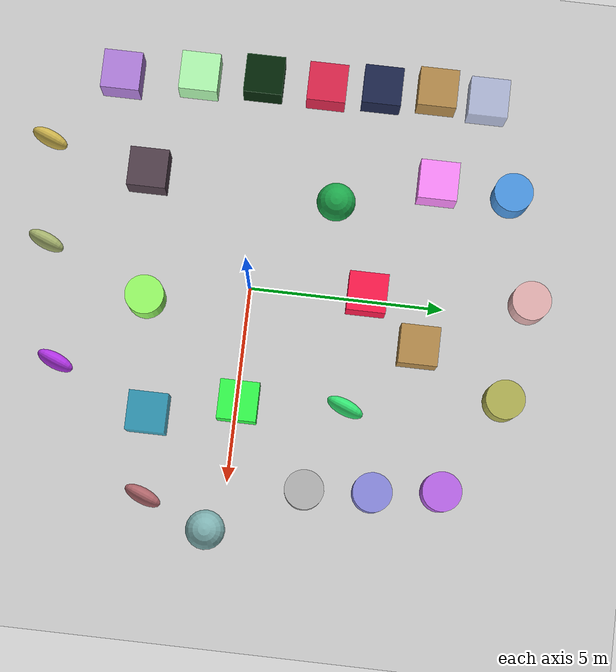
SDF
<sdf version='1.9'>
  <world name='traxter_world'>
    <physics name='1ms' type='ignored'>
      <max_step_size>0.01</max_step_size>
      <real_time_factor>1</real_time_factor>
      <real_time_update_rate>1000</real_time_update_rate>
    </physics>
    <plugin name='ignition::gazebo::systems::Physics' filename='ignition-gazebo-physics-system'/>
    <plugin name='ignition::gazebo::systems::UserCommands' filename='ignition-gazebo-user-commands-system'/>
    <plugin name='ignition::gazebo::systems::SceneBroadcaster' filename='ignition-gazebo-scene-broadcaster-system'/>
    <plugin name='ignition::gazebo::systems::Imu' filename='libignition-gazebo-imu-system.so'/>
    <plugin name='ignition::gazebo::systems::Contact' filename='ignition-gazebo-contact-system'/>
    <plugin name='ignition::gazebo::systems::Sensors' filename='ignition-gazebo-sensors-system'>
      <render_engine>ogre2</render_engine>
    </plugin>
    <gravity>0 0 -9.8</gravity>
    <magnetic_field>6e-06 2.3e-05 -4.2e-05</magnetic_field>
    <atmosphere type='adiabatic'/>
    <scene>
      <ambient>0.4 0.4 0.4 1</ambient>
      <background>0.7 0.7 0.7 1</background>
      <shadows>true</shadows>
    </scene>
    <model name='ground_plane'>
      <static>true</static>
      <link name='link'>
        <collision name='collision'>
          <geometry>
            <plane>
              <normal>0 0 1</normal>
              <size>100 100</size>
            </plane>
          </geometry>
          <surface>
            <friction>
              <ode/>
            </friction>
            <bounce/>
            <contact/>
          </surface>
        </collision>
        <visual name='visual'>
          <geometry>
            <plane>
              <normal>0 0 1</normal>
              <size>100 100</size>
            </plane>
          </geometry>
          <material>
            <ambient>0.8 0.8 0.8 1</ambient>
            <diffuse>0.8 0.8 0.8 1</diffuse>
            <specular>0.8 0.8 0.8 1</specular>
          </material>
        </visual>
        <pose>0 0 0 0 -0 0</pose>
        <inertial>
          <pose>0 0 0 0 -0 0</pose>
          <mass>1</mass>
          <inertia>
            <ixx>1</ixx>
            <ixy>0</ixy>
            <ixz>0</ixz>
            <iyy>1</iyy>
            <iyz>0</iyz>
            <izz>1</izz>
          </inertia>
        </inertial>
        <enable_wind>false</enable_wind>
      </link>
      <pose>0 0 0 0 -0 0</pose>
      <self_collide>false</self_collide>
    </model>
    <model name='box'>
      <pose>-0.115406 3.00387 0.5 0 -0 0</pose>
      <link name='box_link'>
        <inertial>
          <inertia>
            <ixx>0.16666</ixx>
            <ixy>0</ixy>
            <ixz>0</ixz>
            <iyy>0.16666</iyy>
            <iyz>0</iyz>
            <izz>0.16666</izz>
          </inertia>
          <mass>1</mass>
          <pose>0 0 0 0 -0 0</pose>
        </inertial>
        <collision name='box_collision'>
          <geometry>
            <box>
              <size>1 1 1</size>
            </box>
          </geometry>
          <surface>
            <friction>
              <ode/>
            </friction>
            <bounce/>
            <contact/>
          </surface>
        </collision>
        <visual name='box_visual'>
          <geometry>
            <box>
              <size>1 1 1</size>
            </box>
          </geometry>
          <material>
            <ambient>0.95 0.1 0.1 0.8</ambient>
            <diffuse>1.0 0.1 0.3 1</diffuse>
            <specular>1 1 1 1</specular>
          </material>
        </visual>
        <pose>0 0 0 0 -0 0</pose>
        <enable_wind>false</enable_wind>
      </link>
      <static>false</static>
      <self_collide>false</self_collide>
    </model>
    <model name='box_0'>
      <pose>2.97769 0.070848 0.5 0 -0 0</pose>
      <link name='box_link'>
        <inertial>
          <inertia>
            <ixx>0.16666</ixx>
            <ixy>0</ixy>
            <ixz>0</ixz>
            <iyy>0.16666</iyy>
            <iyz>0</iyz>
            <izz>0.16666</izz>
          </inertia>
          <mass>1</mass>
          <pose>0 0 0 0 -0 0</pose>
        </inertial>
        <collision name='box_collision'>
          <geometry>
            <box>
              <size>1 1 1</size>
            </box>
          </geometry>
          <surface>
            <friction>
              <ode/>
            </friction>
            <bounce/>
            <contact/>
          </surface>
        </collision>
        <visual name='box_visual'>
          <geometry>
            <box>
              <size>1 1 1</size>
            </box>
          </geometry>
          <material>
            <ambient>0.1 0.95 0.1 0.8</ambient>
            <diffuse>0.2 1.0 0.3 1</diffuse>
            <specular>1 1 1 1</specular>
          </material>
        </visual>
        <pose>0 0 0 0 -0 0</pose>
        <enable_wind>false</enable_wind>
      </link>
      <static>false</static>
      <self_collide>false</self_collide>
    </model>
    <model name='cylinder'>
      <pose>0.583349 -2.59674 0.5 0 0 0</pose>
      <link name='cylinder_link'>
        <inertial>
          <inertia>
            <ixx>0.14580000000000001</ixx>
            <ixy>0</ixy>
            <ixz>0</ixz>
            <iyy>0.14580000000000001</iyy>
            <iyz>0</iyz>
            <izz>0.125</izz>
          </inertia>
          <mass>1</mass>
          <pose>0 0 0 0 -0 0</pose>
        </inertial>
        <collision name='cylinder_collision'>
          <geometry>
            <cylinder>
              <radius>0.5</radius>
              <length>1</length>
            </cylinder>
          </geometry>
          <surface>
            <friction>
              <ode/>
            </friction>
            <bounce/>
            <contact/>
          </surface>
        </collision>
        <visual name='cylinder_visual'>
          <geometry>
            <cylinder>
              <radius>0.5</radius>
              <length>1</length>
            </cylinder>
          </geometry>
          <material>
            <ambient>0.8 0.95 0.1 0.98</ambient>
            <diffuse>0.6 1.0 0.4 1</diffuse>
            <specular>1 1 1 1</specular>
          </material>
        </visual>
        <pose>0 0 0 0 -0 0</pose>
        <enable_wind>false</enable_wind>
      </link>
      <static>false</static>
      <self_collide>false</self_collide>
    </model>
    <model name='ellipsoid'>
      <pose>2.79648 2.76486 0.270358 1.57079 -0.212416 -0.373363</pose>
      <link name='ellipsoid_link'>
        <inertial>
          <inertia>
            <ixx>0.068000000000000005</ixx>
            <ixy>0</ixy>
            <ixz>0</ixz>
            <iyy>0.058000000000000003</iyy>
            <iyz>0</iyz>
            <izz>0.025999999999999999</izz>
          </inertia>
          <mass>1</mass>
          <pose>0 0 0 0 -0 0</pose>
        </inertial>
        <collision name='ellipsoid_collision'>
          <geometry>
            <ellipsoid>
              <radii>0.2 0.3 0.5</radii>
            </ellipsoid>
          </geometry>
          <surface>
            <friction>
              <ode/>
            </friction>
            <bounce/>
            <contact/>
          </surface>
        </collision>
        <visual name='ellipsoid_visual'>
          <geometry>
            <ellipsoid>
              <radii>0.2 0.3 0.5</radii>
            </ellipsoid>
          </geometry>
          <material>
            <ambient>0.18 0.55 0.1 1</ambient>
            <diffuse>0.2 0.9 0.45 1</diffuse>
            <specular>1 1 1 1</specular>
          </material>
        </visual>
        <pose>0 0 0 0 -0 0</pose>
        <enable_wind>false</enable_wind>
      </link>
      <static>false</static>
      <self_collide>false</self_collide>
    </model>
    <model name='box_2'>
      <pose>1.07518 4.43966 0.5 0 -0 0</pose>
      <link name='box_link'>
        <inertial>
          <inertia>
            <ixx>0.16666</ixx>
            <ixy>0</ixy>
            <ixz>0</ixz>
            <iyy>0.16666</iyy>
            <iyz>0</iyz>
            <izz>0.16666</izz>
          </inertia>
          <mass>1</mass>
          <pose>0 0 0 0 -0 0</pose>
        </inertial>
        <collision name='box_collision'>
          <geometry>
            <box>
              <size>1 1 1</size>
            </box>
          </geometry>
          <surface>
            <friction>
              <ode/>
            </friction>
            <bounce/>
            <contact/>
          </surface>
        </collision>
        <visual name='box_visual'>
          <geometry>
            <box>
              <size>1 1 1</size>
            </box>
          </geometry>
          <material>
            <ambient>0.82 0.08 0.32 0.5</ambient>
            <diffuse>0.71 0.55 0.3 1</diffuse>
            <specular>1 1 1 1</specular>
          </material>
        </visual>
        <pose>0 0 0 0 -0 0</pose>
        <enable_wind>false</enable_wind>
      </link>
      <static>false</static>
      <self_collide>false</self_collide>
    </model>
    <model name='box_3'>
      <pose>-2.67094 -2.9059 0.5 0 -0 0</pose>
      <link name='box_link'>
        <inertial>
          <inertia>
            <ixx>0.16666</ixx>
            <ixy>0</ixy>
            <ixz>0</ixz>
            <iyy>0.16666</iyy>
            <iyz>0</iyz>
            <izz>0.16666</izz>
          </inertia>
          <mass>1</mass>
          <pose>0 0 0 0 -0 0</pose>
        </inertial>
        <collision name='box_collision'>
          <geometry>
            <box>
              <size>1 1 1</size>
            </box>
          </geometry>
          <surface>
            <friction>
              <ode/>
            </friction>
            <bounce/>
            <contact/>
          </surface>
        </collision>
        <visual name='box_visual'>
          <geometry>
            <box>
              <size>1 1 1</size>
            </box>
          </geometry>
          <material>
            <ambient>0.54 0.08 0.52 0.9</ambient>
            <diffuse>0.32 0.25 0.3 1</diffuse>
            <specular>1 1 1 1</specular>
          </material>
        </visual>
        <pose>0 0 0 0 -0 0</pose>
        <enable_wind>false</enable_wind>
      </link>
      <static>false</static>
      <self_collide>false</self_collide>
    </model>
    <model name='sphere'>
      <pose>-2.4052 1.95968 0.5 0 -0 0</pose>
      <link name='sphere_link'>
        <inertial>
          <inertia>
            <ixx>0.10000000000000001</ixx>
            <ixy>0</ixy>
            <ixz>0</ixz>
            <iyy>0.10000000000000001</iyy>
            <iyz>0</iyz>
            <izz>0.10000000000000001</izz>
          </inertia>
          <mass>1</mass>
          <pose>0 0 0 0 -0 0</pose>
        </inertial>
        <collision name='sphere_collision'>
          <geometry>
            <sphere>
              <radius>0.5</radius>
            </sphere>
          </geometry>
          <surface>
            <friction>
              <ode/>
            </friction>
            <bounce/>
            <contact/>
          </surface>
        </collision>
        <visual name='sphere_visual'>
          <geometry>
            <sphere>
              <radius>0.5</radius>
            </sphere>
          </geometry>
          <material>
            <ambient>0.72 0.3 0.66 1</ambient>
            <diffuse>0.12 0.66 0.3 1</diffuse>
            <specular>1 1 1 1</specular>
          </material>
        </visual>
        <pose>0 0 0 0 -0 0</pose>
        <enable_wind>false</enable_wind>
      </link>
      <static>false</static>
      <self_collide>false</self_collide>
    </model>
    <model name='box_4'>
      <pose>-3.17951 4.50028 0.5 0 -0 0</pose>
      <link name='box_link'>
        <inertial>
          <inertia>
            <ixx>0.16666</ixx>
            <ixy>0</ixy>
            <ixz>0</ixz>
            <iyy>0.16666</iyy>
            <iyz>0</iyz>
            <izz>0.16666</izz>
          </inertia>
          <mass>1</mass>
          <pose>0 0 0 0 -0 0</pose>
        </inertial>
        <collision name='box_collision'>
          <geometry>
            <box>
              <size>1 1 1</size>
            </box>
          </geometry>
          <surface>
            <friction>
              <ode/>
            </friction>
            <bounce/>
            <contact/>
          </surface>
        </collision>
        <visual name='box_visual'>
          <geometry>
            <box>
              <size>1 1 1</size>
            </box>
          </geometry>
          <material>
            <ambient>1.0 1.0 0.32 1</ambient>
            <diffuse>1.0 0.55 1.0 1</diffuse>
            <specular>1 1 1 1</specular>
          </material>
        </visual>
        <pose>0 0 0 0 -0 0</pose>
        <enable_wind>false</enable_wind>
      </link>
      <static>false</static>
      <self_collide>false</self_collide>
    </model>
    <model name='box_5'>
      <pose>3.51302 -2.17253 0.5 0 -0 0</pose>
      <link name='box_link'>
        <inertial>
          <inertia>
            <ixx>0.16666</ixx>
            <ixy>0</ixy>
            <ixz>0</ixz>
            <iyy>0.16666</iyy>
            <iyz>0</iyz>
            <izz>0.16666</izz>
          </inertia>
          <mass>1</mass>
          <pose>0 0 0 0 -0 0</pose>
        </inertial>
        <collision name='box_collision'>
          <geometry>
            <box>
              <size>1 1 1</size>
            </box>
          </geometry>
          <surface>
            <friction>
              <ode/>
            </friction>
            <bounce/>
            <contact/>
          </surface>
        </collision>
        <visual name='box_visual'>
          <geometry>
            <box>
              <size>1 1 1</size>
            </box>
          </geometry>
          <material>
            <ambient>0.01 0.34 0.32 0.85</ambient>
            <diffuse>0.01 0.55 0.7 0.73</diffuse>
            <specular>1 1 1 1</specular>
          </material>
        </visual>
        <pose>0 0 0 0 -0 0</pose>
        <enable_wind>false</enable_wind>
      </link>
      <static>false</static>
      <self_collide>false</self_collide>
    </model>
    <model name='box_1'>
      <pose>-5.47952 5.56454 0.5 0 -0 0</pose>
      <link name='box_link'>
        <inertial>
          <inertia>
            <ixx>0.16666</ixx>
            <ixy>0</ixy>
            <ixz>0</ixz>
            <iyy>0.16666</iyy>
            <iyz>0</iyz>
            <izz>0.16666</izz>
          </inertia>
          <mass>1</mass>
          <pose>0 0 0 0 -0 0</pose>
        </inertial>
        <collision name='box_collision'>
          <geometry>
            <box>
              <size>1 1 1</size>
            </box>
          </geometry>
          <surface>
            <friction>
              <ode/>
            </friction>
            <bounce/>
            <contact/>
          </surface>
        </collision>
        <visual name='box_visual'>
          <geometry>
            <box>
              <size>1 1 1</size>
            </box>
          </geometry>
          <material>
            <ambient>0.92 0.98 0.72 0.76</ambient>
            <diffuse>0.71 0.75 0.9 0.82</diffuse>
            <specular>1 1 1 1</specular>
          </material>
        </visual>
        <pose>0 0 0 0 -0 0</pose>
        <enable_wind>false</enable_wind>
      </link>
      <static>false</static>
      <self_collide>false</self_collide>
    </model>
    <model name='box_6'>
      <pose>-5.58431 4.24188 0.5 0 -0 0</pose>
      <link name='box_link'>
        <inertial>
          <inertia>
            <ixx>0.16666</ixx>
            <ixy>0</ixy>
            <ixz>0</ixz>
            <iyy>0.16666</iyy>
            <iyz>0</iyz>
            <izz>0.16666</izz>
          </inertia>
          <mass>1</mass>
          <pose>0 0 0 0 -0 0</pose>
        </inertial>
        <collision name='box_collision'>
          <geometry>
            <box>
              <size>1 1 1</size>
            </box>
          </geometry>
          <surface>
            <friction>
              <ode/>
            </friction>
            <bounce/>
            <contact/>
          </surface>
        </collision>
        <visual name='box_visual'>
          <geometry>
            <box>
              <size>1 1 1</size>
            </box>
          </geometry>
          <material>
            <ambient>0.82 0.08 0.32 0.5</ambient>
            <diffuse>0.71 0.55 0.3 1</diffuse>
            <specular>1 1 1 1</specular>
          </material>
        </visual>
        <pose>0 0 0 0 -0 0</pose>
        <enable_wind>false</enable_wind>
      </link>
      <static>false</static>
      <self_collide>false</self_collide>
    </model>
    <model name='box_7'>
      <pose>-5.48257 2.82277 0.5 0 -0 0</pose>
      <link name='box_link'>
        <inertial>
          <inertia>
            <ixx>0.16666</ixx>
            <ixy>0</ixy>
            <ixz>0</ixz>
            <iyy>0.16666</iyy>
            <iyz>0</iyz>
            <izz>0.16666</izz>
          </inertia>
          <mass>1</mass>
          <pose>0 0 0 0 -0 0</pose>
        </inertial>
        <collision name='box_collision'>
          <geometry>
            <box>
              <size>1 1 1</size>
            </box>
          </geometry>
          <surface>
            <friction>
              <ode/>
            </friction>
            <bounce/>
            <contact/>
          </surface>
        </collision>
        <visual name='box_visual'>
          <geometry>
            <box>
              <size>1 1 1</size>
            </box>
          </geometry>
          <material>
            <ambient>0.54 0.8 0.42 0.93</ambient>
            <diffuse>0.11 0.15 0.3 1</diffuse>
            <specular>1 1 1 1</specular>
          </material>
        </visual>
        <pose>0 0 0 0 -0 0</pose>
        <enable_wind>false</enable_wind>
      </link>
      <static>false</static>
      <self_collide>false</self_collide>
    </model>
    <model name='box_8'>
      <pose>-5.39829 1.40248 0.5 0 -0 0</pose>
      <link name='box_link'>
        <inertial>
          <inertia>
            <ixx>0.16666</ixx>
            <ixy>0</ixy>
            <ixz>0</ixz>
            <iyy>0.16666</iyy>
            <iyz>0</iyz>
            <izz>0.16666</izz>
          </inertia>
          <mass>1</mass>
          <pose>0 0 0 0 -0 0</pose>
        </inertial>
        <collision name='box_collision'>
          <geometry>
            <box>
              <size>1 1 1</size>
            </box>
          </geometry>
          <surface>
            <friction>
              <ode/>
            </friction>
            <bounce/>
            <contact/>
          </surface>
        </collision>
        <visual name='box_visual'>
          <geometry>
            <box>
              <size>1 1 1</size>
            </box>
          </geometry>
          <material>
            <ambient>0.54 0.8 0.42 1</ambient>
            <diffuse>0.87 0.15 0.3 1</diffuse>
            <specular>1 1 1 1</specular>
          </material>
        </visual>
        <pose>0 0 0 0 -0 0</pose>
        <enable_wind>false</enable_wind>
      </link>
      <static>false</static>
      <self_collide>false</self_collide>
    </model>
    <model name='box_9'>
      <pose>-5.42424 -0.233622 0.5 0 -0 0</pose>
      <link name='box_link'>
        <inertial>
          <inertia>
            <ixx>0.16666</ixx>
            <ixy>0</ixy>
            <ixz>0</ixz>
            <iyy>0.16666</iyy>
            <iyz>0</iyz>
            <izz>0.16666</izz>
          </inertia>
          <mass>1</mass>
          <pose>0 0 0 0 -0 0</pose>
        </inertial>
        <collision name='box_collision'>
          <geometry>
            <box>
              <size>1 1 1</size>
            </box>
          </geometry>
          <surface>
            <friction>
              <ode/>
            </friction>
            <bounce/>
            <contact/>
          </surface>
        </collision>
        <visual name='box_visual'>
          <geometry>
            <box>
              <size>1 1 1</size>
            </box>
          </geometry>
          <material>
            <ambient>0.04 0.8 0.042 0.93</ambient>
            <diffuse>0.011 0.15 0.03 1</diffuse>
            <specular>1 1 1 1</specular>
          </material>
        </visual>
        <pose>0 0 0 0 -0 0</pose>
        <enable_wind>false</enable_wind>
      </link>
      <static>false</static>
      <self_collide>false</self_collide>
    </model>
    <model name='box_10'>
      <pose>-5.31544 -1.89587 0.5 0 -0 0</pose>
      <link name='box_link'>
        <inertial>
          <inertia>
            <ixx>0.16666</ixx>
            <ixy>0</ixy>
            <ixz>0</ixz>
            <iyy>0.16666</iyy>
            <iyz>0</iyz>
            <izz>0.16666</izz>
          </inertia>
          <mass>1</mass>
          <pose>0 0 0 0 -0 0</pose>
        </inertial>
        <collision name='box_collision'>
          <geometry>
            <box>
              <size>1 1 1</size>
            </box>
          </geometry>
          <surface>
            <friction>
              <ode/>
            </friction>
            <bounce/>
            <contact/>
          </surface>
        </collision>
        <visual name='box_visual'>
          <geometry>
            <box>
              <size>1 1 1</size>
            </box>
          </geometry>
          <material>
            <ambient>0.12 0.32 0.776 1</ambient>
            <diffuse>0.7 0.99 0.7 1</diffuse>
            <specular>1 1 1 1</specular>
          </material>
        </visual>
        <pose>0 0 0 0 -0 0</pose>
        <enable_wind>false</enable_wind>
      </link>
      <static>false</static>
      <self_collide>false</self_collide>
    </model>
    <model name='box_11'>
      <pose>-5.12767 -3.89037 0.5 0 -0 0</pose>
      <link name='box_link'>
        <inertial>
          <inertia>
            <ixx>0.16666</ixx>
            <ixy>0</ixy>
            <ixz>0</ixz>
            <iyy>0.16666</iyy>
            <iyz>0</iyz>
            <izz>0.16666</izz>
          </inertia>
          <mass>1</mass>
          <pose>0 0 0 0 -0 0</pose>
        </inertial>
        <collision name='box_collision'>
          <geometry>
            <box>
              <size>1 1 1</size>
            </box>
          </geometry>
          <surface>
            <friction>
              <ode/>
            </friction>
            <bounce/>
            <contact/>
          </surface>
        </collision>
        <visual name='box_visual'>
          <geometry>
            <box>
              <size>1 1 1</size>
            </box>
          </geometry>
          <material>
            <ambient>0.45 0.2 0.2 1.0</ambient>
            <diffuse>0.7 0.5 0.87 1.0</diffuse>
            <specular>1 1 1 1</specular>
          </material>
        </visual>
        <pose>0 0 0 0 -0 0</pose>
        <enable_wind>false</enable_wind>
      </link>
      <static>false</static>
      <self_collide>false</self_collide>
    </model>
    <model name='cylinder_0'>
      <pose>5.0016 1.96116 0.5 0 0 -0</pose>
      <link name='cylinder_link'>
        <inertial>
          <inertia>
            <ixx>0.14580000000000001</ixx>
            <ixy>0</ixy>
            <ixz>0</ixz>
            <iyy>0.14580000000000001</iyy>
            <iyz>0</iyz>
            <izz>0.125</izz>
          </inertia>
          <mass>1</mass>
          <pose>0 0 0 0 -0 0</pose>
        </inertial>
        <collision name='cylinder_collision'>
          <geometry>
            <cylinder>
              <radius>0.5</radius>
              <length>1</length>
            </cylinder>
          </geometry>
          <surface>
            <friction>
              <ode/>
            </friction>
            <bounce/>
            <contact/>
          </surface>
        </collision>
        <visual name='cylinder_visual'>
          <geometry>
            <cylinder>
              <radius>0.5</radius>
              <length>1</length>
            </cylinder>
          </geometry>
          <material>
            <ambient>0.3 0.3 0.3 1</ambient>
            <diffuse>0.7 0.7 0.7 1</diffuse>
            <specular>1 1 1 1</specular>
          </material>
        </visual>
        <pose>0 0 0 0 -0 0</pose>
        <enable_wind>false</enable_wind>
      </link>
      <static>false</static>
      <self_collide>false</self_collide>
    </model>
    <model name='cylinder_1'>
      <pose>4.87964 3.65878 0.5 0 -0 0</pose>
      <link name='cylinder_link'>
        <inertial>
          <inertia>
            <ixx>0.14580000000000001</ixx>
            <ixy>0</ixy>
            <ixz>0</ixz>
            <iyy>0.14580000000000001</iyy>
            <iyz>0</iyz>
            <izz>0.125</izz>
          </inertia>
          <mass>1</mass>
          <pose>0 0 0 0 -0 0</pose>
        </inertial>
        <collision name='cylinder_collision'>
          <geometry>
            <cylinder>
              <radius>0.5</radius>
              <length>1</length>
            </cylinder>
          </geometry>
          <surface>
            <friction>
              <ode/>
            </friction>
            <bounce/>
            <contact/>
          </surface>
        </collision>
        <visual name='cylinder_visual'>
          <geometry>
            <cylinder>
              <radius>0.5</radius>
              <length>1</length>
            </cylinder>
          </geometry>
          <material>
            <ambient>0.12 0.12 0.87 1</ambient>
            <diffuse>0.54 0.54 0.87 1</diffuse>
            <specular>1 1 1 1</specular>
          </material>
        </visual>
        <pose>0 0 0 0 -0 0</pose>
        <enable_wind>false</enable_wind>
      </link>
      <static>false</static>
      <self_collide>false</self_collide>
    </model>
    <model name='cylinder_2'>
      <pose>4.66481 5.37877 0.5 0 -0 0</pose>
      <link name='cylinder_link'>
        <inertial>
          <inertia>
            <ixx>0.14580000000000001</ixx>
            <ixy>0</ixy>
            <ixz>0</ixz>
            <iyy>0.14580000000000001</iyy>
            <iyz>0</iyz>
            <izz>0.125</izz>
          </inertia>
          <mass>1</mass>
          <pose>0 0 0 0 -0 0</pose>
        </inertial>
        <collision name='cylinder_collision'>
          <geometry>
            <cylinder>
              <radius>0.5</radius>
              <length>1</length>
            </cylinder>
          </geometry>
          <surface>
            <friction>
              <ode/>
            </friction>
            <bounce/>
            <contact/>
          </surface>
        </collision>
        <visual name='cylinder_visual'>
          <geometry>
            <cylinder>
              <radius>0.5</radius>
              <length>1</length>
            </cylinder>
          </geometry>
          <material>
            <ambient>0.33 0.22 0.77 1</ambient>
            <diffuse>0.73 0.4 0.92 1</diffuse>
            <specular>1 1 1 1</specular>
          </material>
        </visual>
        <pose>0 0 0 0 -0 0</pose>
        <enable_wind>false</enable_wind>
      </link>
      <static>false</static>
      <self_collide>false</self_collide>
    </model>
    <model name='cylinder_3'>
      <pose>2.20179 6.72388 0.5 0 -0 -0</pose>
      <link name='cylinder_link'>
        <inertial>
          <inertia>
            <ixx>0.14580000000000001</ixx>
            <ixy>0</ixy>
            <ixz>0</ixz>
            <iyy>0.14580000000000001</iyy>
            <iyz>0</iyz>
            <izz>0.125</izz>
          </inertia>
          <mass>1</mass>
          <pose>0 0 0 0 -0 0</pose>
        </inertial>
        <collision name='cylinder_collision'>
          <geometry>
            <cylinder>
              <radius>0.5</radius>
              <length>1</length>
            </cylinder>
          </geometry>
          <surface>
            <friction>
              <ode/>
            </friction>
            <bounce/>
            <contact/>
          </surface>
        </collision>
        <visual name='cylinder_visual'>
          <geometry>
            <cylinder>
              <radius>0.5</radius>
              <length>1</length>
            </cylinder>
          </geometry>
          <material>
            <ambient>0.43 0.2 0.33 1</ambient>
            <diffuse>0.7 0.7 0.33 1</diffuse>
            <specular>1 1 1 1</specular>
          </material>
        </visual>
        <pose>0 0 0 0 -0 0</pose>
        <enable_wind>false</enable_wind>
      </link>
      <static>false</static>
      <self_collide>false</self_collide>
    </model>
    <model name='cylinder_4'>
      <pose>-0.360688 7.14077 0.5 0 -0 0</pose>
      <link name='cylinder_link'>
        <inertial>
          <inertia>
            <ixx>0.14580000000000001</ixx>
            <ixy>0</ixy>
            <ixz>0</ixz>
            <iyy>0.14580000000000001</iyy>
            <iyz>0</iyz>
            <izz>0.125</izz>
          </inertia>
          <mass>1</mass>
          <pose>0 0 0 0 -0 0</pose>
        </inertial>
        <collision name='cylinder_collision'>
          <geometry>
            <cylinder>
              <radius>0.5</radius>
              <length>1</length>
            </cylinder>
          </geometry>
          <surface>
            <friction>
              <ode/>
            </friction>
            <bounce/>
            <contact/>
          </surface>
        </collision>
        <visual name='cylinder_visual'>
          <geometry>
            <cylinder>
              <radius>0.5</radius>
              <length>1</length>
            </cylinder>
          </geometry>
          <material>
            <ambient>0.8 0.8 0.43 1</ambient>
            <diffuse>0.9 0.7 0.7 1</diffuse>
            <specular>1 1 1 1</specular>
          </material>
        </visual>
        <pose>0 0 0 0 -0 0</pose>
        <enable_wind>false</enable_wind>
      </link>
      <static>false</static>
      <self_collide>false</self_collide>
    </model>
    <model name='cylinder_5'>
      <pose>-3.07499 6.4207 0.5 -0 0 -0</pose>
      <link name='cylinder_link'>
        <inertial>
          <inertia>
            <ixx>0.14580000000000001</ixx>
            <ixy>0</ixy>
            <ixz>0</ixz>
            <iyy>0.14580000000000001</iyy>
            <iyz>0</iyz>
            <izz>0.125</izz>
          </inertia>
          <mass>1</mass>
          <pose>0 0 0 0 -0 0</pose>
        </inertial>
        <collision name='cylinder_collision'>
          <geometry>
            <cylinder>
              <radius>0.5</radius>
              <length>1</length>
            </cylinder>
          </geometry>
          <surface>
            <friction>
              <ode/>
            </friction>
            <bounce/>
            <contact/>
          </surface>
        </collision>
        <visual name='cylinder_visual'>
          <geometry>
            <cylinder>
              <radius>0.5</radius>
              <length>1</length>
            </cylinder>
          </geometry>
          <material>
            <ambient>0.6 0.7 0.9 1</ambient>
            <diffuse>0.3 0.6 0.9 1</diffuse>
            <specular>1 1 1 1</specular>
          </material>
        </visual>
        <pose>0 0 0 0 -0 0</pose>
        <enable_wind>false</enable_wind>
      </link>
      <static>false</static>
      <self_collide>false</self_collide>
    </model>
    <model name='ellipsoid_0'>
      <pose>-3.28194 -5.58673 0.270358 1.5708 -0.212417 -0.373896</pose>
      <link name='ellipsoid_link'>
        <inertial>
          <inertia>
            <ixx>0.068000000000000005</ixx>
            <ixy>0</ixy>
            <ixz>0</ixz>
            <iyy>0.058000000000000003</iyy>
            <iyz>0</iyz>
            <izz>0.025999999999999999</izz>
          </inertia>
          <mass>1</mass>
          <pose>0 0 0 0 -0 0</pose>
        </inertial>
        <collision name='ellipsoid_collision'>
          <geometry>
            <ellipsoid>
              <radii>0.2 0.3 0.5</radii>
            </ellipsoid>
          </geometry>
          <surface>
            <friction>
              <ode/>
            </friction>
            <bounce/>
            <contact/>
          </surface>
        </collision>
        <visual name='ellipsoid_visual'>
          <geometry>
            <ellipsoid>
              <radii>0.2 0.3 0.5</radii>
            </ellipsoid>
          </geometry>
          <material>
            <ambient>0.6 0.7 0.3 1</ambient>
            <diffuse>0.8 0.7 0.3 1</diffuse>
            <specular>1 1 1 1</specular>
          </material>
        </visual>
        <pose>0 0 0 0 -0 0</pose>
        <enable_wind>false</enable_wind>
      </link>
      <static>false</static>
      <self_collide>false</self_collide>
    </model>
    <model name='ellipsoid_1'>
      <pose>-0.601371 -5.33813 0.270358 1.5708 -0.212417 -0.373485</pose>
      <link name='ellipsoid_link'>
        <inertial>
          <inertia>
            <ixx>0.068000000000000005</ixx>
            <ixy>0</ixy>
            <ixz>0</ixz>
            <iyy>0.058000000000000003</iyy>
            <iyz>0</iyz>
            <izz>0.025999999999999999</izz>
          </inertia>
          <mass>1</mass>
          <pose>0 0 0 0 -0 0</pose>
        </inertial>
        <collision name='ellipsoid_collision'>
          <geometry>
            <ellipsoid>
              <radii>0.2 0.3 0.5</radii>
            </ellipsoid>
          </geometry>
          <surface>
            <friction>
              <ode/>
            </friction>
            <bounce/>
            <contact/>
          </surface>
        </collision>
        <visual name='ellipsoid_visual'>
          <geometry>
            <ellipsoid>
              <radii>0.2 0.3 0.5</radii>
            </ellipsoid>
          </geometry>
          <material>
            <ambient>0.87 0.8 0.3 1</ambient>
            <diffuse>0.65 0.7 0.43 1</diffuse>
            <specular>1 1 1 1</specular>
          </material>
        </visual>
        <pose>0 0 0 0 -0 0</pose>
        <enable_wind>false</enable_wind>
      </link>
      <static>false</static>
      <self_collide>false</self_collide>
    </model>
    <model name='ellipsoid_2'>
      <pose>2.44805 -4.70339 0.270358 1.5708 -0.212417 -0.37331</pose>
      <link name='ellipsoid_link'>
        <inertial>
          <inertia>
            <ixx>0.068000000000000005</ixx>
            <ixy>0</ixy>
            <ixz>0</ixz>
            <iyy>0.058000000000000003</iyy>
            <iyz>0</iyz>
            <izz>0.025999999999999999</izz>
          </inertia>
          <mass>1</mass>
          <pose>0 0 0 0 -0 0</pose>
        </inertial>
        <collision name='ellipsoid_collision'>
          <geometry>
            <ellipsoid>
              <radii>0.2 0.3 0.5</radii>
            </ellipsoid>
          </geometry>
          <surface>
            <friction>
              <ode/>
            </friction>
            <bounce/>
            <contact/>
          </surface>
        </collision>
        <visual name='ellipsoid_visual'>
          <geometry>
            <ellipsoid>
              <radii>0.2 0.3 0.5</radii>
            </ellipsoid>
          </geometry>
          <material>
            <ambient>0.63 0.2 0.4 1</ambient>
            <diffuse>0.7 0.2 0.9 1</diffuse>
            <specular>1 1 1 1</specular>
          </material>
        </visual>
        <pose>0 0 0 0 -0 0</pose>
        <enable_wind>false</enable_wind>
      </link>
      <static>false</static>
      <self_collide>false</self_collide>
    </model>
    <model name='ellipsoid_3'>
      <pose>5.59305 -2.06754 0.270358 1.5708 -0.212417 -0.373563</pose>
      <link name='ellipsoid_link'>
        <inertial>
          <inertia>
            <ixx>0.068000000000000005</ixx>
            <ixy>0</ixy>
            <ixz>0</ixz>
            <iyy>0.058000000000000003</iyy>
            <iyz>0</iyz>
            <izz>0.025999999999999999</izz>
          </inertia>
          <mass>1</mass>
          <pose>0 0 0 0 -0 0</pose>
        </inertial>
        <collision name='ellipsoid_collision'>
          <geometry>
            <ellipsoid>
              <radii>0.2 0.3 0.5</radii>
            </ellipsoid>
          </geometry>
          <surface>
            <friction>
              <ode/>
            </friction>
            <bounce/>
            <contact/>
          </surface>
        </collision>
        <visual name='ellipsoid_visual'>
          <geometry>
            <ellipsoid>
              <radii>0.2 0.3 0.5</radii>
            </ellipsoid>
          </geometry>
          <material>
            <ambient>0.4 0.42 0.69 1</ambient>
            <diffuse>0.69 0.4 0.42 1</diffuse>
            <specular>1 1 1 1</specular>
          </material>
        </visual>
        <pose>0 0 0 0 -0 0</pose>
        <enable_wind>false</enable_wind>
      </link>
      <static>false</static>
      <self_collide>false</self_collide>
    </model>
    <model name='sphere_0'>
      <pose>6.26265 -0.386116 0.5 0 -0 0</pose>
      <link name='sphere_link'>
        <inertial>
          <inertia>
            <ixx>0.10000000000000001</ixx>
            <ixy>0</ixy>
            <ixz>0</ixz>
            <iyy>0.10000000000000001</iyy>
            <iyz>0</iyz>
            <izz>0.10000000000000001</izz>
          </inertia>
          <mass>1</mass>
          <pose>0 0 0 0 -0 0</pose>
        </inertial>
        <collision name='sphere_collision'>
          <geometry>
            <sphere>
              <radius>0.5</radius>
            </sphere>
          </geometry>
          <surface>
            <friction>
              <ode/>
            </friction>
            <bounce/>
            <contact/>
          </surface>
        </collision>
        <visual name='sphere_visual'>
          <geometry>
            <sphere>
              <radius>0.5</radius>
            </sphere>
          </geometry>
          <material>
            <ambient>1.0 0.01 0.3 1</ambient>
            <diffuse>0.5 0.7 0.7 1</diffuse>
            <specular>1 1 1 1</specular>
          </material>
        </visual>
        <pose>0 0 0 0 -0 0</pose>
        <enable_wind>false</enable_wind>
      </link>
      <static>false</static>
      <self_collide>false</self_collide>
    </model>
    <light name='sun' type='directional'>
      <pose>0 0 10 0 -0 0</pose>
      <cast_shadows>true</cast_shadows>
      <intensity>1</intensity>
      <direction>-0.5 0.1 -0.9</direction>
      <diffuse>0.8 0.8 0.8 1</diffuse>
      <specular>0.2 0.2 0.2 1</specular>
      <attenuation>
        <range>1000</range>
        <linear>0.01</linear>
        <constant>0.90000000000000002</constant>
        <quadratic>0.001</quadratic>
      </attenuation>
      <spot>
        <inner_angle>0</inner_angle>
        <outer_angle>0</outer_angle>
        <falloff>0</falloff>
      </spot>
    </light>
  </world>
</sdf>
